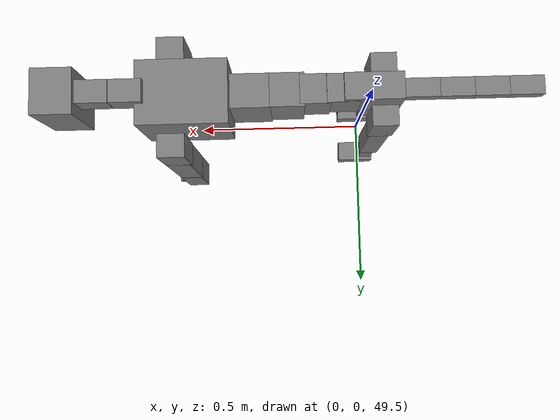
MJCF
<mujoco model="dog">

    <default>
        <joint armature="0.02" stiffness="1" damping="0.2" limited="true"/>
        <geom condim="3" friction="1 0.05 0.05" margin="0.01"/>
        <motor ctrllimited="true" ctrlrange="-1.0 1.0" forcelimited="true" gear="50"/>
    </default>

    <compiler inertiafromgeom="true" angle="radian"/>

    <option timestep="0.016" iterations="50" tolerance="1e-10" solver="Newton" jacobian="dense" cone="pyramidal"/>

    <size nconmax="20000" njmax="60000" nstack="5000000"/>
    <visual>
        <map force="0.1" zfar="30"/>
        <rgba haze="0.15 0.25 0.35 1"/>
        <quality shadowsize="2048"/>
        <global offwidth="800" offheight="800"/>
    </visual>

    <asset>
        <texture type="skybox" builtin="gradient" rgb1="0.3 0.5 0.7" rgb2="0 0 0" width="512" height="512"/>
        <texture name="texplane" type="2d" builtin="checker" rgb1=".2 .3 .4" rgb2=".1 0.15 0.2" width="512" height="512"
                 mark="cross" markrgb=".8 .8 .8"/>
        <texture name="texgeom" type="cube" builtin="flat" mark="cross" width="127" height="1278" rgb1="0.8 0.6 0.4"
                 rgb2="0.8 0.6 0.4" markrgb="1 1 1" random="0.01"/>

        <material name="matplane" reflectance="0.3" texture="texplane" texrepeat="1 1" texuniform="true"/>
        <material name="matgeom" texture="texgeom" texuniform="true" rgba="0.8 0.6 .4 1"/>
    </asset>

    <worldbody>
        <geom name="floor" pos="0 0 0" size="0 0 .25" type="plane" material="matplane" condim="3"/>

        <light directional="false" diffuse=".2 .2 .2" specular="0 0 0" pos="0 0 5" dir="0 0 -1" castshadow="false"/>
        <light mode="targetbodycom" target="torso" directional="false" diffuse=".8 .8 .8" specular="0.3 0.3 0.3"
               pos="0 0 4.0" dir="0 0 -1"/>

        <body name="root" pos="0 0 50">
            <freejoint name="root_1"/>
            <geom type="box" pos="0 0 -0.02" size="0.0774  0.0358  0.063" density="2030"/>

            <body name="spine1" pos="0.054 0 0">
                <joint name="spine1_y" axis="0 1 0" range="0 0.7" limited="true"/>
                <geom type="box" pos="0.02375 0 -0.03" size="0.04375  0.0375  0.05985" density="2030"/>

                <body name="spine2" pos="0.0612 0 0">
                    <joint name="spine2_y" axis="0 1 0" range="-0.15 0.15" limited="true"/>
                    <geom type="box" pos="0.03555  0  -0.04" size="0.04055  0.039  0.06615" density="2030"/>

                    <body name="spine3" pos="0.0730 0 0">
                        <joint name="spine3_y" axis="0 1 0" range="-0.15 0.15" limited="true"/>
                        <geom type="box" pos="0.03555  0  -0.057" size="0.04555  0.0445  0.081" density="2030"/>

                        <body name="spine4" pos="0.0780 0 0">
                            <joint name="spine4_y" axis="0 1 0" range="-0.15 0.15" limited="true"/>
                            <geom type="box" pos="0.05265  0  -0.07" size="0.05265  0.045  0.09135" density="2030"/>

                            <body name="torso" pos="0.1082 0 0">
                                <joint name="torso_y" axis="0 1 0" range="-0.15 0.15" limited="true"/>
                                <geom type="box" pos="0.11925  0  -0.085" size="0.11925  0.085  0.11745"
                                      density="2030"/>

                                <body name="neck1" pos="0.2160  0   0.0180">
                                    <joint name="neck1_y" axis="0 1 0" range="-1.2  -1" limited="true"/>
                                    <geom type="box" pos="0.0423  0  0" size="0.0423  0.03  0.036" density="2325"/>

                                    <body name="neck2" pos="0.0853  0  0">
                                        <joint name="neck2_y" axis="0 1 0" range="0.1  0" limited="true"/>
                                        <geom type="box" pos="0.0423  0  0" size="0.0423  0.03  0.036" density="2325"/>

                                        <body name="head" pos="0.0853  0  0">
                                            <joint name="head_y" axis="0 1 0" range="-0.3  -0.2" limited="true"/>
                                            <geom type="box" pos="0.0531  0  -0.055" size="0.0531  0.06  0.1044"
                                                  density="4030"/>

                                        </body>
                                    </body>
                                </body>

                                <body name="front_shoulder" pos="0.156  0   -0.0480">
                                    <joint name="front_shoulder_y" axis="0 1 0" range="-1 1.5" limited="true"/>
                                    <geom type="box" pos="0 0.13 -0.0541" size="0.0365  0.0312  0.0808" density="1158"/>
                                    <geom type="box" pos="0 -0.13 -0.0541" size="0.0365  0.0312  0.0808"
                                          density="1158"/>

                                    <body name="front_elbow" pos="0  0  -0.1083">
                                        <joint name="front_elbow_y" axis="0 1 0" range="-2 0" limited="true"/>
                                        <geom type="box" pos="0 0.13 -0.1401" size="0.0328  0.0335  0.1401"
                                              density="1081"/>
                                        <geom type="box" pos="0 -0.13 -0.1401" size="0.0328  0.0335  0.1401"
                                              density="1081"/>

                                        <body name="front_wrist" pos="0  0  -0.2802">
                                            <joint name="front_wrist_y" axis="0 1 0" range="-0.2 0" limited="true"/>
                                            <geom type="box" pos="0 0.13 -0.0846" size="0.0316  0.0351  0.0977"
                                                  density="1664"/>
                                            <geom type="box" pos="0 -0.13 -0.0846" size="0.0316  0.0351  0.0977"
                                                  density="1664"/>

                                            <body name="front_finger_end" pos="0  0  -0.1692">
                                                <joint name="front_finger_y" axis="0 1 0" range="-0.4 1"
                                                       limited="true"/>
                                                <geom type="box" pos="0.0215  0.13  -0.0045"
                                                      size="0.0394  0.0215  0.0195" density="1515"/>
                                                <geom type="box" pos="0.0215  -0.13  -0.0045"
                                                      size="0.0394  0.0215  0.0195" density="1515"/>

                                            </body>

                                        </body>
                                    </body>
                                </body>

                            </body>
                        </body>
                    </body>
                </body>
            </body>

            <body name="back_hip" pos="-0.03 0 -0.018">
                <joint name="back_hip_y" axis="0 1 0" range="-1.5 0.3" limited="true"/>
                <geom type="box" pos="0 0.07 -0.0507" size="0.0344  0.0270  0.0735" density="1154"/>
                <geom type="box" pos="0 -0.07 -0.0507" size="0.0344  0.0270  0.0735" density="1154"/>

                <body name="back_knee" pos="0  0  -0.1014">
                    <joint name="back_knee_y" axis="0 1 0" range="0 2.8" limited="true"/>
                    <geom type="box" pos="0 0.07 -0.1493" size="0.0272  0.0268  0.1648" density="1227"/>
                    <geom type="box" pos="0 -0.07 -0.1493" size="0.0272  0.0268  0.1648" density="1227"/>

                    <body name="back_ankle" pos="0  0  -0.2985">
                        <joint name="back_ankle_y" axis="0 1 0" range="-2.2 0" limited="true"/>
                        <geom type="box" pos="0 0.07 -0.0769" size="0.0206  0.0206  0.0882" density="1284"/>
                        <geom type="box" pos="0 -0.07 -0.0769" size="0.0206  0.0206  0.0882" density="1284"/>

                        <body name="back_toe_end" pos="0  0  -0.1538">
                            <joint name="back_toe_y" axis="0 1 0" range="-0.4 1" limited="true"/>
                            <geom type="box" pos="0.0296  0.07  -0.0101" size="0.0543  0.0296  0.0251" density="1515"/>
                            <geom type="box" pos="0.0296  -0.07  -0.0101" size="0.0543  0.0296  0.0251" density="1515"/>

                        </body>
                    </body>
                </body>
            </body>

            <body name="tail1" pos="-0.074 0 -0.006">
                <joint name="tail1_y" axis="0 1 0" range="-0.2 0.2" limited="true"/>
                <geom type="box" pos="-0.0536  0  0" size="0.045  0.025  0.0175" density="1587"/>

                <body name="tail2" pos="-0.09 0 0">
                    <joint name="tail2_y" axis="0 1 0" range="-0.2 0.2" limited="true"/>
                    <geom type="box" pos="-0.0536  0  0" size="0.045  0.025  0.0175" density="1587"/>

                    <body name="tail3" pos="-0.09 0 0">
                        <joint name="tail3_y" axis="0 1 0" range="-0.2 0.2" limited="true"/>
                        <geom type="box" pos="-0.0536  0  0" size="0.045  0.025  0.0175" density="1587"/>

                        <body name="tail4" pos="-0.09 0 0">
                            <joint name="tail4_y" axis="0 1 0" range="-0.2 0.2" limited="true"/>
                            <geom type="box" pos="-0.0536  0  0" size="0.045  0.025  0.0175" density="1587"/>

                        </body>
                    </body>
                </body>
            </body>
        </body>
    </worldbody>

    <actuator>
        <motor joint="spine1_y" forcerange="-150 150     "/>
        <motor joint="spine2_y" forcerange="-150 150     "/>
        <motor joint="spine3_y" forcerange="-150 150     "/>
        <motor joint="spine4_y" forcerange="-150 150     "/>
        <motor joint="torso_y" forcerange="-150 150     "/>
        <motor joint="neck1_y" forcerange="-100 100       "/>
        <motor joint="neck2_y" forcerange="-100 100       "/>
        <motor joint="head_y" forcerange="-150 150       "/>
        <motor joint="front_shoulder_y" forcerange="-172.10 135.70"/>
        <motor joint="front_elbow_y" forcerange="-193.15 150.63"/>
        <motor joint="front_wrist_y" forcerange="-148.40 132.09"/>
        <motor joint="front_finger_y" forcerange="-26.16 48.51"/>
        <motor joint="back_hip_y" forcerange="-357.05 203.19"/>
        <motor joint="back_knee_y" forcerange="-293.38 296.95"/>
        <motor joint="back_angle_y" forcerange="-88.57 141.82"/>
        <motor joint="back_toe_y" forcerange="-127.08 30.03"/>
        <motor joint="tail1_y" forcerange="-50 50     "/>
        <motor joint="tail2_y" forcerange="-50 50     "/>
        <motor joint="tail3_y" forcerange="-50 50     "/>
        <motor joint="tail4_y" forcerange="-50 50     "/>
    </actuator>
</mujoco>
